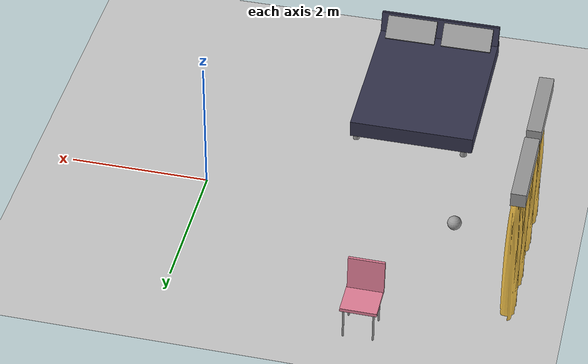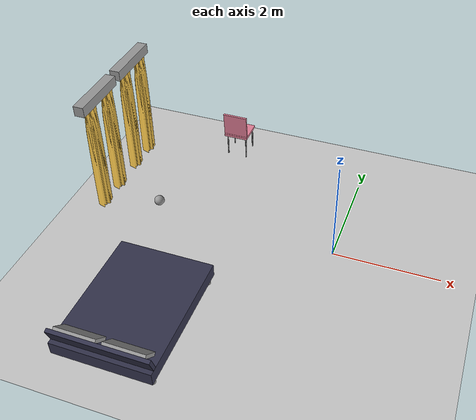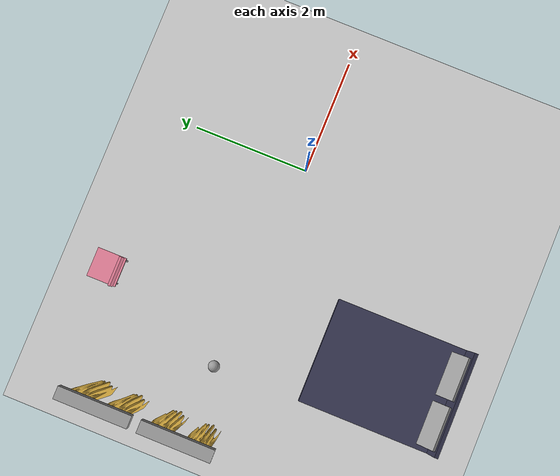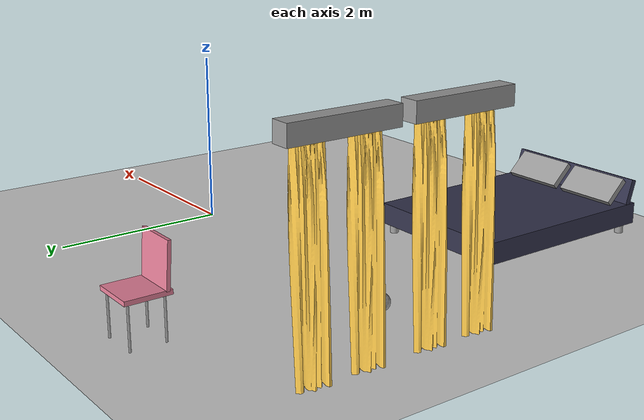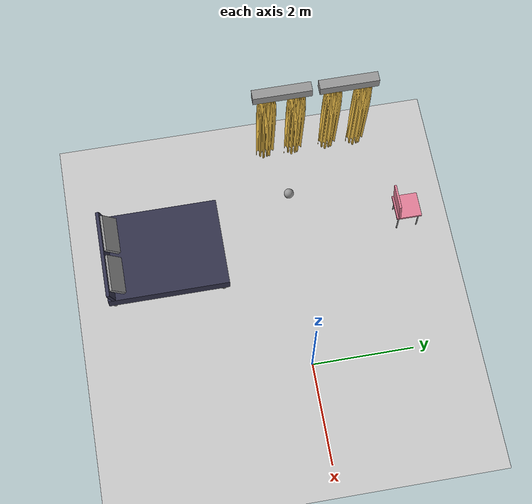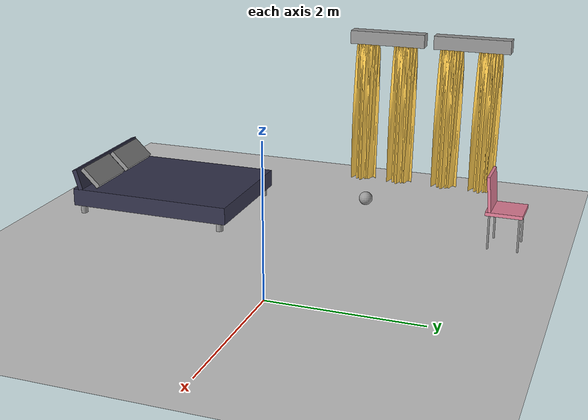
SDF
<sdf version="1.7">
 <world name="default">
  <model name="ground_plane">
   <static>1</static>
   <link name="link">
    <collision name="collision">
     <geometry><plane><normal>0 0 1</normal><size>100 100</size></plane></geometry>
     <surface>
      <contact><collide_bitmask>65535</collide_bitmask></contact>
      <friction><ode><mu>100</mu><mu2>50</mu2></ode></friction>
     </surface>
    </collision>
    <visual name="visual">
     <cast_shadows>0</cast_shadows>
     <geometry><plane><normal>0 0 1</normal><size>100 100</size></plane></geometry>
     <material>
      <script><uri>file://media/materials/scripts/gazebo.material</uri><name>Gazebo/Grey</name></script>
     </material>
    </visual>
   </link>
  </model>
  <model name="my_chair">
   <link name="link">
    <inertial>
     <mass>1</mass>
     <inertia>
      <ixx>0.166667</ixx>
      <ixy>0</ixy>
      <ixz>0</ixz>
      <iyy>0.166667</iyy>
      <iyz>0</iyz>
      <izz>0.166667</izz>
     </inertia>
    </inertial>
    <gravity>0</gravity>
    <visual name="visual">
     <geometry><box><size>0.5 0.5 0.05</size></box></geometry>
     <material>
      <script><name>Gazebo/Grey</name><uri>file://media/materials/scripts/gazebo.material</uri></script>
      <shader type="pixel"><normal_map>__default__</normal_map></shader>
      <ambient>0.9 0.5 0.6 1</ambient>
      <diffuse>0.9 0.5 0.6 1</diffuse>
      <specular>0.01 0.01 0.01 1</specular>
      <emissive>0 0 0 1</emissive>
     </material>
     <pose>0 0 0.5 0 -0 0</pose>
    </visual>
    <collision name="collision">
     <pose>0 0 0.5 0 -0 0</pose>
     <geometry><box><size>0.5 0.5 0.05</size></box></geometry>
     <surface>
      <friction>
       <ode><mu>1</mu><mu2>1</mu2><fdir1>0 0 0</fdir1><slip1>0</slip1><slip2>0</slip2></ode>
       <torsional>
        <coefficient>1</coefficient>
        <patch_radius>0</patch_radius>
        <surface_radius>0</surface_radius>
        <use_patch_radius>1</use_patch_radius>
        <ode><slip>0</slip></ode>
       </torsional>
      </friction>
      <bounce><restitution_coefficient>0</restitution_coefficient><threshold>1e+06</threshold></bounce>
      <contact>
       <collide_without_contact>0</collide_without_contact>
       <collide_without_contact_bitmask>1</collide_without_contact_bitmask>
       <collide_bitmask>1</collide_bitmask>
       <ode>
        <soft_cfm>0</soft_cfm>
        <soft_erp>0.2</soft_erp>
        <kp>1e+13</kp>
        <kd>1</kd>
        <max_vel>0.01</max_vel>
        <min_depth>0</min_depth>
       </ode>
       <bullet>
        <split_impulse>1</split_impulse>
        <split_impulse_penetration_threshold>-0.01</split_impulse_penetration_threshold>
        <soft_cfm>0</soft_cfm>
        <soft_erp>0.2</soft_erp>
        <kp>1e+13</kp>
        <kd>1</kd>
       </bullet>
      </contact>
     </surface>
    </collision>
   </link>
   <link name="link_0">
    <inertial>
     <mass>1</mass>
     <inertia><ixx>0.145833</ixx><ixy>0</ixy><ixz>0</ixz><iyy>0.145833</iyy><iyz>0</iyz><izz>0.125</izz></inertia>
    </inertial>
    <pose>-0.200315 -0.184767 -0.272701 -0 -0 -0</pose>
    <gravity>0</gravity>
    <visual name="visual">
     <pose>0 0 0.5 0 -0 0</pose>
     <geometry><cylinder><radius>0.013</radius><length>0.5</length></cylinder></geometry>
     <material>
      <lighting>1</lighting>
      <script><uri>file://media/materials/scripts/gazebo.material</uri><name>Gazebo/Grey</name></script>
      <shader type="pixel"><normal_map>__default__</normal_map></shader>
      <ambient>0.3 0.3 0.3 1</ambient>
      <diffuse>0.7 0.7 0.7 1</diffuse>
      <specular>0.01 0.01 0.01 1</specular>
      <emissive>0 0 0 1</emissive>
     </material>
    </visual>
    <collision name="collision">
     <pose>0 0 0.5 0 -0 0</pose>
     <geometry><cylinder><radius>0.013</radius><length>0.5</length></cylinder></geometry>
     <surface>
      <friction>
       <ode><mu>1</mu><mu2>1</mu2><fdir1>0 0 0</fdir1><slip1>0</slip1><slip2>0</slip2></ode>
       <torsional>
        <coefficient>1</coefficient>
        <patch_radius>0</patch_radius>
        <surface_radius>0</surface_radius>
        <use_patch_radius>1</use_patch_radius>
        <ode><slip>0</slip></ode>
       </torsional>
      </friction>
      <bounce><restitution_coefficient>0</restitution_coefficient><threshold>1e+06</threshold></bounce>
      <contact>
       <collide_without_contact>0</collide_without_contact>
       <collide_without_contact_bitmask>1</collide_without_contact_bitmask>
       <collide_bitmask>1</collide_bitmask>
       <ode>
        <soft_cfm>0</soft_cfm>
        <soft_erp>0.2</soft_erp>
        <kp>1e+13</kp>
        <kd>1</kd>
        <max_vel>0.01</max_vel>
        <min_depth>0</min_depth>
       </ode>
       <bullet>
        <split_impulse>1</split_impulse>
        <split_impulse_penetration_threshold>-0.01</split_impulse_penetration_threshold>
        <soft_cfm>0</soft_cfm>
        <soft_erp>0.2</soft_erp>
        <kp>1e+13</kp>
        <kd>1</kd>
       </bullet>
      </contact>
     </surface>
    </collision>
   </link>
   <link name="link_0_clone">
    <inertial>
     <mass>1</mass>
     <inertia><ixx>0.145833</ixx><ixy>0</ixy><ixz>0</ixz><iyy>0.145833</iyy><iyz>0</iyz><izz>0.125</izz></inertia>
    </inertial>
    <pose>-0.198839 0.194466 -0.272701 -0 -0 -0</pose>
    <gravity>0</gravity>
    <visual name="visual">
     <pose>0 0 0.5 0 -0 0</pose>
     <geometry><cylinder><radius>0.013</radius><length>0.5</length></cylinder></geometry>
     <material>
      <lighting>1</lighting>
      <script><uri>file://media/materials/scripts/gazebo.material</uri><name>Gazebo/Grey</name></script>
      <shader type="pixel"><normal_map>__default__</normal_map></shader>
      <ambient>0.3 0.3 0.3 1</ambient>
      <diffuse>0.7 0.7 0.7 1</diffuse>
      <specular>0.01 0.01 0.01 1</specular>
      <emissive>0 0 0 1</emissive>
     </material>
    </visual>
    <collision name="collision">
     <pose>0 0 0.5 0 -0 0</pose>
     <geometry><cylinder><radius>0.013</radius><length>0.5</length></cylinder></geometry>
     <surface>
      <friction>
       <ode><mu>1</mu><mu2>1</mu2><fdir1>0 0 0</fdir1><slip1>0</slip1><slip2>0</slip2></ode>
       <torsional>
        <coefficient>1</coefficient>
        <patch_radius>0</patch_radius>
        <surface_radius>0</surface_radius>
        <use_patch_radius>1</use_patch_radius>
        <ode><slip>0</slip></ode>
       </torsional>
      </friction>
      <bounce><restitution_coefficient>0</restitution_coefficient><threshold>1e+06</threshold></bounce>
      <contact>
       <collide_without_contact>0</collide_without_contact>
       <collide_without_contact_bitmask>1</collide_without_contact_bitmask>
       <collide_bitmask>1</collide_bitmask>
       <ode>
        <soft_cfm>0</soft_cfm>
        <soft_erp>0.2</soft_erp>
        <kp>1e+13</kp>
        <kd>1</kd>
        <max_vel>0.01</max_vel>
        <min_depth>0</min_depth>
       </ode>
       <bullet>
        <split_impulse>1</split_impulse>
        <split_impulse_penetration_threshold>-0.01</split_impulse_penetration_threshold>
        <soft_cfm>0</soft_cfm>
        <soft_erp>0.2</soft_erp>
        <kp>1e+13</kp>
        <kd>1</kd>
       </bullet>
      </contact>
     </surface>
    </collision>
   </link>
   <link name="link_0_clone_0">
    <inertial>
     <mass>1</mass>
     <inertia><ixx>0.145833</ixx><ixy>0</ixy><ixz>0</ixz><iyy>0.145833</iyy><iyz>0</iyz><izz>0.125</izz></inertia>
    </inertial>
    <pose>0.211914 -0.198881 -0.272701 -0 -0 -0</pose>
    <gravity>0</gravity>
    <visual name="visual">
     <pose>0 0 0.5 0 -0 0</pose>
     <geometry><cylinder><radius>0.013</radius><length>0.5</length></cylinder></geometry>
     <material>
      <lighting>1</lighting>
      <script><uri>file://media/materials/scripts/gazebo.material</uri><name>Gazebo/Grey</name></script>
      <shader type="pixel"><normal_map>__default__</normal_map></shader>
      <ambient>0.3 0.3 0.3 1</ambient>
      <diffuse>0.7 0.7 0.7 1</diffuse>
      <specular>0.01 0.01 0.01 1</specular>
      <emissive>0 0 0 1</emissive>
     </material>
    </visual>
    <collision name="collision">
     <pose>0 0 0.5 0 -0 0</pose>
     <geometry><cylinder><radius>0.013</radius><length>0.5</length></cylinder></geometry>
     <surface>
      <friction>
       <ode><mu>1</mu><mu2>1</mu2><fdir1>0 0 0</fdir1><slip1>0</slip1><slip2>0</slip2></ode>
       <torsional>
        <coefficient>1</coefficient>
        <patch_radius>0</patch_radius>
        <surface_radius>0</surface_radius>
        <use_patch_radius>1</use_patch_radius>
        <ode><slip>0</slip></ode>
       </torsional>
      </friction>
      <bounce><restitution_coefficient>0</restitution_coefficient><threshold>1e+06</threshold></bounce>
      <contact>
       <collide_without_contact>0</collide_without_contact>
       <collide_without_contact_bitmask>1</collide_without_contact_bitmask>
       <collide_bitmask>1</collide_bitmask>
       <ode>
        <soft_cfm>0</soft_cfm>
        <soft_erp>0.2</soft_erp>
        <kp>1e+13</kp>
        <kd>1</kd>
        <max_vel>0.01</max_vel>
        <min_depth>0</min_depth>
       </ode>
       <bullet>
        <split_impulse>1</split_impulse>
        <split_impulse_penetration_threshold>-0.01</split_impulse_penetration_threshold>
        <soft_cfm>0</soft_cfm>
        <soft_erp>0.2</soft_erp>
        <kp>1e+13</kp>
        <kd>1</kd>
       </bullet>
      </contact>
     </surface>
    </collision>
   </link>
   <link name="link_0_clone_1">
    <inertial>
     <mass>1</mass>
     <inertia><ixx>0.145833</ixx><ixy>0</ixy><ixz>0</ixz><iyy>0.145833</iyy><iyz>0</iyz><izz>0.125</izz></inertia>
    </inertial>
    <pose>0.207422 0.203987 -0.272701 -0 -0 -0</pose>
    <gravity>0</gravity>
    <visual name="visual">
     <pose>0 0 0.5 0 -0 0</pose>
     <geometry><cylinder><radius>0.013</radius><length>0.5</length></cylinder></geometry>
     <material>
      <lighting>1</lighting>
      <script><uri>file://media/materials/scripts/gazebo.material</uri><name>Gazebo/Grey</name></script>
      <shader type="pixel"><normal_map>__default__</normal_map></shader>
      <ambient>0.3 0.3 0.3 1</ambient>
      <diffuse>0.7 0.7 0.7 1</diffuse>
      <specular>0.01 0.01 0.01 1</specular>
      <emissive>0 0 0 1</emissive>
     </material>
    </visual>
    <collision name="collision">
     <pose>0 0 0.5 0 -0 0</pose>
     <geometry><cylinder><radius>0.013</radius><length>0.5</length></cylinder></geometry>
     <surface>
      <friction>
       <ode><mu>1</mu><mu2>1</mu2><fdir1>0 0 0</fdir1><slip1>0</slip1><slip2>0</slip2></ode>
       <torsional>
        <coefficient>1</coefficient>
        <patch_radius>0</patch_radius>
        <surface_radius>0</surface_radius>
        <use_patch_radius>1</use_patch_radius>
        <ode><slip>0</slip></ode>
       </torsional>
      </friction>
      <bounce><restitution_coefficient>0</restitution_coefficient><threshold>1e+06</threshold></bounce>
      <contact>
       <collide_without_contact>0</collide_without_contact>
       <collide_without_contact_bitmask>1</collide_without_contact_bitmask>
       <collide_bitmask>1</collide_bitmask>
       <ode>
        <soft_cfm>0</soft_cfm>
        <soft_erp>0.2</soft_erp>
        <kp>1e+13</kp>
        <kd>1</kd>
        <max_vel>0.01</max_vel>
        <min_depth>0</min_depth>
       </ode>
       <bullet>
        <split_impulse>1</split_impulse>
        <split_impulse_penetration_threshold>-0.01</split_impulse_penetration_threshold>
        <soft_cfm>0</soft_cfm>
        <soft_erp>0.2</soft_erp>
        <kp>1e+13</kp>
        <kd>1</kd>
       </bullet>
      </contact>
     </surface>
    </collision>
   </link>
   <link name="link_clone">
    <inertial>
     <mass>1</mass>
     <inertia>
      <ixx>0.166667</ixx>
      <ixy>0</ixy>
      <ixz>0</ixz>
      <iyy>0.166667</iyy>
      <iyz>0</iyz>
      <izz>0.166667</izz>
     </inertia>
    </inertial>
    <pose>-0.00806 -0.212496 0.264135 -0 -0 -0</pose>
    <gravity>0</gravity>
    <visual name="visual">
     <geometry><box><size>0.5 0.5 0.04</size></box></geometry>
     <material>
      <script><name>Gazebo/Grey</name><uri>file://media/materials/scripts/gazebo.material</uri></script>
      <shader type="pixel"><normal_map>__default__</normal_map></shader>
      <ambient>0.9 0.5 0.6 1</ambient>
      <diffuse>0.9 0.5 0.6 1</diffuse>
      <specular>0.01 0.01 0.01 1</specular>
      <emissive>0 0 0 1</emissive>
     </material>
     <pose>0 0 0.5 -1.5 0 0</pose>
    </visual>
    <collision name="collision">
     <pose>0 0 0.5 -1.5 0 0</pose>
     <geometry><box><size>0.5 0.5 0.04</size></box></geometry>
     <surface>
      <friction>
       <ode><mu>1</mu><mu2>1</mu2><fdir1>0 0 0</fdir1><slip1>0</slip1><slip2>0</slip2></ode>
       <torsional>
        <coefficient>1</coefficient>
        <patch_radius>0</patch_radius>
        <surface_radius>0</surface_radius>
        <use_patch_radius>1</use_patch_radius>
        <ode><slip>0</slip></ode>
       </torsional>
      </friction>
      <bounce><restitution_coefficient>0</restitution_coefficient><threshold>1e+06</threshold></bounce>
      <contact>
       <collide_without_contact>0</collide_without_contact>
       <collide_without_contact_bitmask>1</collide_without_contact_bitmask>
       <collide_bitmask>1</collide_bitmask>
       <ode>
        <soft_cfm>0</soft_cfm>
        <soft_erp>0.2</soft_erp>
        <kp>1e+13</kp>
        <kd>1</kd>
        <max_vel>0.01</max_vel>
        <min_depth>0</min_depth>
       </ode>
       <bullet>
        <split_impulse>1</split_impulse>
        <split_impulse_penetration_threshold>-0.01</split_impulse_penetration_threshold>
        <soft_cfm>0</soft_cfm>
        <soft_erp>0.2</soft_erp>
        <kp>1e+13</kp>
        <kd>1</kd>
       </bullet>
      </contact>
     </surface>
    </collision>
   </link>
   <static>1</static>
   <pose>-2.76354 2.4224 0 0 -0 0</pose>
  </model>
  <model name="my_bed">
   <link name="link">
    <inertial>
     <mass>1</mass>
     <inertia>
      <ixx>0.166667</ixx>
      <ixy>0</ixy>
      <ixz>0</ixz>
      <iyy>0.166667</iyy>
      <iyz>0</iyz>
      <izz>0.166667</izz>
     </inertia>
    </inertial>
    <pose>-1.13234 -0.845126 0 0 -0 0</pose>
    <visual name="visual">
     <geometry><box><size>1.8 2.4 0.25</size></box></geometry>
     <material>
      <script><name>Gazebo/Grey</name><uri>file://media/materials/scripts/gazebo.material</uri></script>
      <shader type="pixel"><normal_map>__default__</normal_map></shader>
      <ambient>0.2 0.2 0.3 1</ambient>
      <diffuse>0.2 0.2 0.3 1</diffuse>
      <specular>0.01 0.01 0.01 1</specular>
      <emissive>0.1 0.1 0.1 1</emissive>
      <lighting>1</lighting>
     </material>
     <pose>0 0 0.25 0 -0 0</pose>
    </visual>
    <collision name="collision">
     <pose>0 0 0.25 0 -0 0</pose>
     <geometry><box><size>1.8 2.4 0.25</size></box></geometry>
     <surface>
      <friction>
       <ode><mu>1</mu><mu2>1</mu2><fdir1>0 0 0</fdir1><slip1>0</slip1><slip2>0</slip2></ode>
       <torsional>
        <coefficient>1</coefficient>
        <patch_radius>0</patch_radius>
        <surface_radius>0</surface_radius>
        <use_patch_radius>1</use_patch_radius>
        <ode><slip>0</slip></ode>
       </torsional>
      </friction>
      <bounce><restitution_coefficient>0</restitution_coefficient><threshold>1e+06</threshold></bounce>
      <contact>
       <collide_without_contact>0</collide_without_contact>
       <collide_without_contact_bitmask>1</collide_without_contact_bitmask>
       <collide_bitmask>1</collide_bitmask>
       <ode>
        <soft_cfm>0</soft_cfm>
        <soft_erp>0.2</soft_erp>
        <kp>1e+13</kp>
        <kd>1</kd>
        <max_vel>0.01</max_vel>
        <min_depth>0</min_depth>
       </ode>
       <bullet>
        <split_impulse>1</split_impulse>
        <split_impulse_penetration_threshold>-0.01</split_impulse_penetration_threshold>
        <soft_cfm>0</soft_cfm>
        <soft_erp>0.2</soft_erp>
        <kp>1e+13</kp>
        <kd>1</kd>
       </bullet>
      </contact>
     </surface>
    </collision>
   </link>
   <link name="link_0">
    <inertial>
     <mass>1</mass>
     <inertia><ixx>0.145833</ixx><ixy>0</ixy><ixz>0</ixz><iyy>0.145833</iyy><iyz>0</iyz><izz>0.125</izz></inertia>
    </inertial>
    <pose>-0.307109 0.243589 0.068801 0 -0 0</pose>
    <gravity>0</gravity>
    <visual name="visual">
     <geometry><cylinder><radius>0.05</radius><length>0.13</length></cylinder></geometry>
     <material>
      <lighting>1</lighting>
      <script><uri>file://media/materials/scripts/gazebo.material</uri><name>Gazebo/Grey</name></script>
      <shader type="pixel"><normal_map>__default__</normal_map></shader>
      <ambient>0.3 0.3 0.3 1</ambient>
      <diffuse>0.7 0.7 0.7 1</diffuse>
      <specular>0.01 0.01 0.01 1</specular>
      <emissive>0 0 0 1</emissive>
     </material>
    </visual>
    <collision name="collision">
     <geometry><cylinder><radius>0.05</radius><length>0.13</length></cylinder></geometry>
     <surface>
      <friction>
       <ode><mu>1</mu><mu2>1</mu2><fdir1>0 0 0</fdir1><slip1>0</slip1><slip2>0</slip2></ode>
       <torsional>
        <coefficient>1</coefficient>
        <patch_radius>0</patch_radius>
        <surface_radius>0</surface_radius>
        <use_patch_radius>1</use_patch_radius>
        <ode><slip>0</slip></ode>
       </torsional>
      </friction>
      <bounce><restitution_coefficient>0</restitution_coefficient><threshold>1e+06</threshold></bounce>
      <contact>
       <collide_without_contact>0</collide_without_contact>
       <collide_without_contact_bitmask>1</collide_without_contact_bitmask>
       <collide_bitmask>1</collide_bitmask>
       <ode>
        <soft_cfm>0</soft_cfm>
        <soft_erp>0.2</soft_erp>
        <kp>1e+13</kp>
        <kd>1</kd>
        <max_vel>0.01</max_vel>
        <min_depth>0</min_depth>
       </ode>
       <bullet>
        <split_impulse>1</split_impulse>
        <split_impulse_penetration_threshold>-0.01</split_impulse_penetration_threshold>
        <soft_cfm>0</soft_cfm>
        <soft_erp>0.2</soft_erp>
        <kp>1e+13</kp>
        <kd>1</kd>
       </bullet>
      </contact>
     </surface>
    </collision>
   </link>
   <link name="link_0_0_clone">
    <inertial>
     <mass>1</mass>
     <inertia>
      <ixx>0.166667</ixx>
      <ixy>0</ixy>
      <ixz>0</ixz>
      <iyy>0.166667</iyy>
      <iyz>0</iyz>
      <izz>0.166667</izz>
     </inertia>
    </inertial>
    <pose>-1.57153 -1.81704 0.527562 0 -0 0</pose>
    <gravity>0</gravity>
    <visual name="visual_0">
     <pose>0 0 0 0.8 -0 0</pose>
     <geometry><box><size>0.75 0.07 0.35</size></box></geometry>
     <material>
      <lighting>1</lighting>
      <script><uri>file://media/materials/scripts/gazebo.material</uri><name>Gazebo/Grey</name></script>
      <shader type="pixel"><normal_map>__default__</normal_map></shader>
      <ambient>1 1 1 0</ambient>
      <diffuse>1 1 1 1</diffuse>
      <specular>0.01 0.01 0.01 1</specular>
      <emissive>0 0 0 1</emissive>
     </material>
    </visual>
    <collision name="collision">
     <pose>0 0 0 0.8 -0 0</pose>
     <geometry><box><size>0.75 0.07 0.35</size></box></geometry>
     <surface>
      <friction>
       <ode><mu>1</mu><mu2>1</mu2><fdir1>0 0 0</fdir1><slip1>0</slip1><slip2>0</slip2></ode>
       <torsional>
        <coefficient>1</coefficient>
        <patch_radius>0</patch_radius>
        <surface_radius>0</surface_radius>
        <use_patch_radius>1</use_patch_radius>
        <ode><slip>0</slip></ode>
       </torsional>
      </friction>
      <bounce><restitution_coefficient>0</restitution_coefficient><threshold>1e+06</threshold></bounce>
      <contact>
       <collide_without_contact>0</collide_without_contact>
       <collide_without_contact_bitmask>1</collide_without_contact_bitmask>
       <collide_bitmask>1</collide_bitmask>
       <ode>
        <soft_cfm>0</soft_cfm>
        <soft_erp>0.2</soft_erp>
        <kp>1e+13</kp>
        <kd>1</kd>
        <max_vel>0.01</max_vel>
        <min_depth>0</min_depth>
       </ode>
       <bullet>
        <split_impulse>1</split_impulse>
        <split_impulse_penetration_threshold>-0.01</split_impulse_penetration_threshold>
        <soft_cfm>0</soft_cfm>
        <soft_erp>0.2</soft_erp>
        <kp>1e+13</kp>
        <kd>1</kd>
       </bullet>
      </contact>
     </surface>
    </collision>
   </link>
   <link name="link_0_0_clone_clone">
    <inertial>
     <mass>1</mass>
     <inertia>
      <ixx>0.166667</ixx>
      <ixy>0</ixy>
      <ixz>0</ixz>
      <iyy>0.166667</iyy>
      <iyz>0</iyz>
      <izz>0.166667</izz>
     </inertia>
    </inertial>
    <pose>-0.71588 -1.81886 0.527562 0 -0 0</pose>
    <gravity>0</gravity>
    <visual name="visual_0">
     <pose>0 0 0 0.8 -0 0</pose>
     <geometry><box><size>0.75 0.07 0.35</size></box></geometry>
     <material>
      <lighting>1</lighting>
      <script><uri>file://media/materials/scripts/gazebo.material</uri><name>Gazebo/Grey</name></script>
      <shader type="pixel"><normal_map>__default__</normal_map></shader>
      <ambient>1 1 1 0</ambient>
      <diffuse>1 1 1 1</diffuse>
      <specular>0.01 0.01 0.01 1</specular>
      <emissive>0 0 0 1</emissive>
     </material>
    </visual>
    <collision name="collision">
     <pose>0 0 0 0.8 -0 0</pose>
     <geometry><box><size>0.75 0.07 0.35</size></box></geometry>
     <surface>
      <friction>
       <ode><mu>1</mu><mu2>1</mu2><fdir1>0 0 0</fdir1><slip1>0</slip1><slip2>0</slip2></ode>
       <torsional>
        <coefficient>1</coefficient>
        <patch_radius>0</patch_radius>
        <surface_radius>0</surface_radius>
        <use_patch_radius>1</use_patch_radius>
        <ode><slip>0</slip></ode>
       </torsional>
      </friction>
      <bounce><restitution_coefficient>0</restitution_coefficient><threshold>1e+06</threshold></bounce>
      <contact>
       <collide_without_contact>0</collide_without_contact>
       <collide_without_contact_bitmask>1</collide_without_contact_bitmask>
       <collide_bitmask>1</collide_bitmask>
       <ode>
        <soft_cfm>0</soft_cfm>
        <soft_erp>0.2</soft_erp>
        <kp>1e+13</kp>
        <kd>1</kd>
        <max_vel>0.01</max_vel>
        <min_depth>0</min_depth>
       </ode>
       <bullet>
        <split_impulse>1</split_impulse>
        <split_impulse_penetration_threshold>-0.01</split_impulse_penetration_threshold>
        <soft_cfm>0</soft_cfm>
        <soft_erp>0.2</soft_erp>
        <kp>1e+13</kp>
        <kd>1</kd>
       </bullet>
      </contact>
     </surface>
    </collision>
   </link>
   <link name="link_0_clone">
    <inertial>
     <mass>1</mass>
     <inertia><ixx>0.145833</ixx><ixy>0</ixy><ixz>0</ixz><iyy>0.145833</iyy><iyz>0</iyz><izz>0.125</izz></inertia>
    </inertial>
    <pose>-1.9007 0.274345 0.068801 0 -0 0</pose>
    <gravity>0</gravity>
    <visual name="visual">
     <geometry><cylinder><radius>0.05</radius><length>0.13</length></cylinder></geometry>
     <material>
      <lighting>1</lighting>
      <script><uri>file://media/materials/scripts/gazebo.material</uri><name>Gazebo/Grey</name></script>
      <shader type="pixel"><normal_map>__default__</normal_map></shader>
      <ambient>0.3 0.3 0.3 1</ambient>
      <diffuse>0.7 0.7 0.7 1</diffuse>
      <specular>0.01 0.01 0.01 1</specular>
      <emissive>0 0 0 1</emissive>
     </material>
    </visual>
    <collision name="collision">
     <geometry><cylinder><radius>0.05</radius><length>0.13</length></cylinder></geometry>
     <surface>
      <friction>
       <ode><mu>1</mu><mu2>1</mu2><fdir1>0 0 0</fdir1><slip1>0</slip1><slip2>0</slip2></ode>
       <torsional>
        <coefficient>1</coefficient>
        <patch_radius>0</patch_radius>
        <surface_radius>0</surface_radius>
        <use_patch_radius>1</use_patch_radius>
        <ode><slip>0</slip></ode>
       </torsional>
      </friction>
      <bounce><restitution_coefficient>0</restitution_coefficient><threshold>1e+06</threshold></bounce>
      <contact>
       <collide_without_contact>0</collide_without_contact>
       <collide_without_contact_bitmask>1</collide_without_contact_bitmask>
       <collide_bitmask>1</collide_bitmask>
       <ode>
        <soft_cfm>0</soft_cfm>
        <soft_erp>0.2</soft_erp>
        <kp>1e+13</kp>
        <kd>1</kd>
        <max_vel>0.01</max_vel>
        <min_depth>0</min_depth>
       </ode>
       <bullet>
        <split_impulse>1</split_impulse>
        <split_impulse_penetration_threshold>-0.01</split_impulse_penetration_threshold>
        <soft_cfm>0</soft_cfm>
        <soft_erp>0.2</soft_erp>
        <kp>1e+13</kp>
        <kd>1</kd>
       </bullet>
      </contact>
     </surface>
    </collision>
   </link>
   <link name="link_0_clone_0">
    <inertial>
     <mass>1</mass>
     <inertia><ixx>0.145833</ixx><ixy>0</ixy><ixz>0</ixz><iyy>0.145833</iyy><iyz>0</iyz><izz>0.125</izz></inertia>
    </inertial>
    <pose>-0.307106 -1.92435 0.068801 0 -0 0</pose>
    <gravity>0</gravity>
    <visual name="visual">
     <geometry><cylinder><radius>0.05</radius><length>0.13</length></cylinder></geometry>
     <material>
      <lighting>1</lighting>
      <script><uri>file://media/materials/scripts/gazebo.material</uri><name>Gazebo/Grey</name></script>
      <shader type="pixel"><normal_map>__default__</normal_map></shader>
      <ambient>0.3 0.3 0.3 1</ambient>
      <diffuse>0.7 0.7 0.7 1</diffuse>
      <specular>0.01 0.01 0.01 1</specular>
      <emissive>0 0 0 1</emissive>
     </material>
    </visual>
    <collision name="collision">
     <geometry><cylinder><radius>0.05</radius><length>0.13</length></cylinder></geometry>
     <surface>
      <friction>
       <ode><mu>1</mu><mu2>1</mu2><fdir1>0 0 0</fdir1><slip1>0</slip1><slip2>0</slip2></ode>
       <torsional>
        <coefficient>1</coefficient>
        <patch_radius>0</patch_radius>
        <surface_radius>0</surface_radius>
        <use_patch_radius>1</use_patch_radius>
        <ode><slip>0</slip></ode>
       </torsional>
      </friction>
      <bounce><restitution_coefficient>0</restitution_coefficient><threshold>1e+06</threshold></bounce>
      <contact>
       <collide_without_contact>0</collide_without_contact>
       <collide_without_contact_bitmask>1</collide_without_contact_bitmask>
       <collide_bitmask>1</collide_bitmask>
       <ode>
        <soft_cfm>0</soft_cfm>
        <soft_erp>0.2</soft_erp>
        <kp>1e+13</kp>
        <kd>1</kd>
        <max_vel>0.01</max_vel>
        <min_depth>0</min_depth>
       </ode>
       <bullet>
        <split_impulse>1</split_impulse>
        <split_impulse_penetration_threshold>-0.01</split_impulse_penetration_threshold>
        <soft_cfm>0</soft_cfm>
        <soft_erp>0.2</soft_erp>
        <kp>1e+13</kp>
        <kd>1</kd>
       </bullet>
      </contact>
     </surface>
    </collision>
   </link>
   <link name="link_0_clone_1">
    <inertial>
     <mass>1</mass>
     <inertia><ixx>0.145833</ixx><ixy>0</ixy><ixz>0</ixz><iyy>0.145833</iyy><iyz>0</iyz><izz>0.125</izz></inertia>
    </inertial>
    <pose>-1.92795 -1.92176 0.068801 0 -0 0</pose>
    <gravity>0</gravity>
    <visual name="visual">
     <geometry><cylinder><radius>0.05</radius><length>0.13</length></cylinder></geometry>
     <material>
      <lighting>1</lighting>
      <script><uri>file://media/materials/scripts/gazebo.material</uri><name>Gazebo/Grey</name></script>
      <shader type="pixel"><normal_map>__default__</normal_map></shader>
      <ambient>0.3 0.3 0.3 1</ambient>
      <diffuse>0.7 0.7 0.7 1</diffuse>
      <specular>0.01 0.01 0.01 1</specular>
      <emissive>0 0 0 1</emissive>
     </material>
    </visual>
    <collision name="collision">
     <geometry><cylinder><radius>0.05</radius><length>0.13</length></cylinder></geometry>
     <surface>
      <friction>
       <ode><mu>1</mu><mu2>1</mu2><fdir1>0 0 0</fdir1><slip1>0</slip1><slip2>0</slip2></ode>
       <torsional>
        <coefficient>1</coefficient>
        <patch_radius>0</patch_radius>
        <surface_radius>0</surface_radius>
        <use_patch_radius>1</use_patch_radius>
        <ode><slip>0</slip></ode>
       </torsional>
      </friction>
      <bounce><restitution_coefficient>0</restitution_coefficient><threshold>1e+06</threshold></bounce>
      <contact>
       <collide_without_contact>0</collide_without_contact>
       <collide_without_contact_bitmask>1</collide_without_contact_bitmask>
       <collide_bitmask>1</collide_bitmask>
       <ode>
        <soft_cfm>0</soft_cfm>
        <soft_erp>0.2</soft_erp>
        <kp>1e+13</kp>
        <kd>1</kd>
        <max_vel>0.01</max_vel>
        <min_depth>0</min_depth>
       </ode>
       <bullet>
        <split_impulse>1</split_impulse>
        <split_impulse_penetration_threshold>-0.01</split_impulse_penetration_threshold>
        <soft_cfm>0</soft_cfm>
        <soft_erp>0.2</soft_erp>
        <kp>1e+13</kp>
        <kd>1</kd>
       </bullet>
      </contact>
     </surface>
    </collision>
   </link>
   <link name="link_1">
    <inertial>
     <mass>1</mass>
     <inertia>
      <ixx>0.166667</ixx>
      <ixy>0</ixy>
      <ixz>0</ixz>
      <iyy>0.166667</iyy>
      <iyz>0</iyz>
      <izz>0.166667</izz>
     </inertia>
    </inertial>
    <pose>-1.13157 -1.96783 0.518762 0 -0 0</pose>
    <visual name="visual">
     <pose>0 0 0 0.3 -0 0</pose>
     <geometry><box><size>1.8 0.07 0.3</size></box></geometry>
     <material>
      <lighting>1</lighting>
      <script><uri>file://media/materials/scripts/gazebo.material</uri><name>Gazebo/Grey</name></script>
      <shader type="pixel"><normal_map>__default__</normal_map></shader>
      <ambient>0.2 0.2 0.3 1</ambient>
      <diffuse>0.2 0.2 0.3 1</diffuse>
      <specular>0.01 0.01 0.01 1</specular>
      <emissive>0.1 0.1 0.1 1</emissive>
     </material>
    </visual>
    <collision name="collision">
     <pose>0 0 0 0.3 -0 0</pose>
     <geometry><box><size>1.8 0.07 0.3</size></box></geometry>
     <surface>
      <friction>
       <ode><mu>1</mu><mu2>1</mu2><fdir1>0 0 0</fdir1><slip1>0</slip1><slip2>0</slip2></ode>
       <torsional>
        <coefficient>1</coefficient>
        <patch_radius>0</patch_radius>
        <surface_radius>0</surface_radius>
        <use_patch_radius>1</use_patch_radius>
        <ode><slip>0</slip></ode>
       </torsional>
      </friction>
      <bounce><restitution_coefficient>0</restitution_coefficient><threshold>1e+06</threshold></bounce>
      <contact>
       <collide_without_contact>0</collide_without_contact>
       <collide_without_contact_bitmask>1</collide_without_contact_bitmask>
       <collide_bitmask>1</collide_bitmask>
       <ode>
        <soft_cfm>0</soft_cfm>
        <soft_erp>0.2</soft_erp>
        <kp>1e+13</kp>
        <kd>1</kd>
        <max_vel>0.01</max_vel>
        <min_depth>0</min_depth>
       </ode>
       <bullet>
        <split_impulse>1</split_impulse>
        <split_impulse_penetration_threshold>-0.01</split_impulse_penetration_threshold>
        <soft_cfm>0</soft_cfm>
        <soft_erp>0.2</soft_erp>
        <kp>1e+13</kp>
        <kd>1</kd>
       </bullet>
      </contact>
     </surface>
    </collision>
   </link>
   <static>1</static>
   <pose>-1.58128 -1.66699 0 0 -0 0</pose>
  </model>
  <model name="my_white_ball">
   <link name="link_0">
    <inertial>
     <mass>1</mass>
     <inertia><ixx>0.1</ixx><ixy>0</ixy><ixz>0</ixz><iyy>0.1</iyy><iyz>0</iyz><izz>0.1</izz></inertia>
    </inertial>
    <visual name="visual">
     <geometry><sphere><radius>0.1</radius></sphere></geometry>
     <material>
      <lighting>1</lighting>
      <script><uri>file://media/materials/scripts/gazebo.material</uri><name>Gazebo/Grey</name></script>
      <shader type="pixel"><normal_map>__default__</normal_map></shader>
      <ambient>1 1 1 1</ambient>
      <diffuse>1 1 1 1</diffuse>
      <specular>1 1 1 1</specular>
      <emissive>1 1 1 1</emissive>
     </material>
    </visual>
    <collision name="collision">
     <geometry><sphere><radius>0.1</radius></sphere></geometry>
     <surface>
      <friction>
       <ode><mu>1</mu><mu2>1</mu2><fdir1>0 0 0</fdir1><slip1>0</slip1><slip2>0</slip2></ode>
       <torsional>
        <coefficient>1</coefficient>
        <patch_radius>0</patch_radius>
        <surface_radius>0</surface_radius>
        <use_patch_radius>1</use_patch_radius>
        <ode><slip>0</slip></ode>
       </torsional>
      </friction>
      <bounce><restitution_coefficient>0</restitution_coefficient><threshold>1e+06</threshold></bounce>
      <contact>
       <collide_without_contact>0</collide_without_contact>
       <collide_without_contact_bitmask>1</collide_without_contact_bitmask>
       <collide_bitmask>1</collide_bitmask>
       <ode>
        <soft_cfm>0</soft_cfm>
        <soft_erp>0.2</soft_erp>
        <kp>1e+13</kp>
        <kd>1</kd>
        <max_vel>0.01</max_vel>
        <min_depth>0</min_depth>
       </ode>
       <bullet>
        <split_impulse>1</split_impulse>
        <split_impulse_penetration_threshold>-0.01</split_impulse_penetration_threshold>
        <soft_cfm>0</soft_cfm>
        <soft_erp>0.2</soft_erp>
        <kp>1e+13</kp>
        <kd>1</kd>
       </bullet>
      </contact>
     </surface>
    </collision>
   </link>
   <static>0</static>
   <pose>-3.62852 0.197947 0.1 0 -0 0</pose>
  </model>
  <model name="my_curtains_v2">
   <link name="link_0">
    <inertial>
     <mass>1</mass>
     <inertia>
      <ixx>0.166667</ixx>
      <ixy>0</ixy>
      <ixz>0</ixz>
      <iyy>0.166667</iyy>
      <iyz>0</iyz>
      <izz>0.166667</izz>
     </inertia>
    </inertial>
    <pose>-0.196447 0.34663 -0.060343 0 -0 1.5714</pose>
    <visual name="visual">
     <pose>0 0 1.28 0 -0 0</pose>
     <geometry>
      <mesh>
       <uri>/home/massari/workspace/catkin_ws/src/my_robot/models/my_curtains/../../meshes/my_curtain.dae</uri>
       <scale>0.6 1 1.15</scale>
      </mesh>
     </geometry>
     <material>
      <lighting>1</lighting>
      <script><uri>file://media/materials/scripts/gazebo.material</uri><name>Gazebo/Grey</name></script>
      <shader type="pixel"><normal_map>__default__</normal_map></shader>
      <ambient>1 0.8 0.3 1</ambient>
      <diffuse>1 0.8 0.3 1</diffuse>
      <specular>0.01 0.01 0.01 1</specular>
      <emissive>0 0 0 1</emissive>
     </material>
    </visual>
    <collision name="collision">
     <pose>0 0 1.28 0 -0 0</pose>
     <geometry>
      <mesh>
       <uri>/home/massari/workspace/catkin_ws/src/my_robot/models/my_curtains/../../meshes/my_curtain.dae</uri>
       <scale>0.6 1 1.15</scale>
      </mesh>
     </geometry>
     <surface>
      <friction>
       <ode><mu>1</mu><mu2>1</mu2><fdir1>0 0 0</fdir1><slip1>0</slip1><slip2>0</slip2></ode>
       <torsional>
        <coefficient>1</coefficient>
        <patch_radius>0</patch_radius>
        <surface_radius>0</surface_radius>
        <use_patch_radius>1</use_patch_radius>
        <ode><slip>0</slip></ode>
       </torsional>
      </friction>
      <bounce><restitution_coefficient>0</restitution_coefficient><threshold>1e+06</threshold></bounce>
      <contact>
       <collide_without_contact>0</collide_without_contact>
       <collide_without_contact_bitmask>1</collide_without_contact_bitmask>
       <collide_bitmask>1</collide_bitmask>
       <ode>
        <soft_cfm>0</soft_cfm>
        <soft_erp>0.2</soft_erp>
        <kp>1e+13</kp>
        <kd>1</kd>
        <max_vel>0.01</max_vel>
        <min_depth>0</min_depth>
       </ode>
       <bullet>
        <split_impulse>1</split_impulse>
        <split_impulse_penetration_threshold>-0.01</split_impulse_penetration_threshold>
        <soft_cfm>0</soft_cfm>
        <soft_erp>0.2</soft_erp>
        <kp>1e+13</kp>
        <kd>1</kd>
       </bullet>
      </contact>
     </surface>
    </collision>
   </link>
   <link name="link_0_clone">
    <inertial>
     <mass>1</mass>
     <inertia>
      <ixx>0.166667</ixx>
      <ixy>0</ixy>
      <ixz>0</ixz>
      <iyy>0.166667</iyy>
      <iyz>0</iyz>
      <izz>0.166667</izz>
     </inertia>
    </inertial>
    <pose>-0.192892 0.930317 -0.060343 0 -0 1.5714</pose>
    <visual name="visual">
     <pose>0 0 1.28 0 -0 0</pose>
     <geometry>
      <mesh>
       <uri>/home/massari/workspace/catkin_ws/src/my_robot/models/my_curtains/../../meshes/my_curtain.dae</uri>
       <scale>0.6 1 1.15</scale>
      </mesh>
     </geometry>
     <material>
      <lighting>1</lighting>
      <script><uri>file://media/materials/scripts/gazebo.material</uri><name>Gazebo/Grey</name></script>
      <shader type="pixel"><normal_map>__default__</normal_map></shader>
      <ambient>1 0.8 0.3 1</ambient>
      <diffuse>1 0.8 0.3 1</diffuse>
      <specular>0.01 0.01 0.01 1</specular>
      <emissive>0 0 0 1</emissive>
     </material>
    </visual>
    <collision name="collision">
     <pose>0 0 1.28 0 -0 0</pose>
     <geometry>
      <mesh>
       <uri>/home/massari/workspace/catkin_ws/src/my_robot/models/my_curtains/../../meshes/my_curtain.dae</uri>
       <scale>0.6 1 1.15</scale>
      </mesh>
     </geometry>
     <surface>
      <friction>
       <ode><mu>1</mu><mu2>1</mu2><fdir1>0 0 0</fdir1><slip1>0</slip1><slip2>0</slip2></ode>
       <torsional>
        <coefficient>1</coefficient>
        <patch_radius>0</patch_radius>
        <surface_radius>0</surface_radius>
        <use_patch_radius>1</use_patch_radius>
        <ode><slip>0</slip></ode>
       </torsional>
      </friction>
      <bounce><restitution_coefficient>0</restitution_coefficient><threshold>1e+06</threshold></bounce>
      <contact>
       <collide_without_contact>0</collide_without_contact>
       <collide_without_contact_bitmask>1</collide_without_contact_bitmask>
       <collide_bitmask>1</collide_bitmask>
       <ode>
        <soft_cfm>0</soft_cfm>
        <soft_erp>0.2</soft_erp>
        <kp>1e+13</kp>
        <kd>1</kd>
        <max_vel>0.01</max_vel>
        <min_depth>0</min_depth>
       </ode>
       <bullet>
        <split_impulse>1</split_impulse>
        <split_impulse_penetration_threshold>-0.01</split_impulse_penetration_threshold>
        <soft_cfm>0</soft_cfm>
        <soft_erp>0.2</soft_erp>
        <kp>1e+13</kp>
        <kd>1</kd>
       </bullet>
      </contact>
     </surface>
    </collision>
   </link>
   <link name="link_2">
    <inertial>
     <mass>1</mass>
     <inertia>
      <ixx>0.166667</ixx>
      <ixy>0</ixy>
      <ixz>0</ixz>
      <iyy>0.166667</iyy>
      <iyz>0</iyz>
      <izz>0.166667</izz>
     </inertia>
    </inertial>
    <pose>-0.239313 0.203562 1.05159 0 -0 0</pose>
    <visual name="visual">
     <pose>0 0 1.28 0 -0 0</pose>
     <geometry><box><size>0.2 1.15 0.2</size></box></geometry>
     <material>
      <lighting>1</lighting>
      <script><uri>file://media/materials/scripts/gazebo.material</uri><name>Gazebo/Grey</name></script>
      <shader type="pixel"><normal_map>__default__</normal_map></shader>
      <ambient>0.9 0.9 0.9 1</ambient>
      <diffuse>0.9 0.9 0.9 1</diffuse>
      <specular>0.01 0.01 0.01 1</specular>
      <emissive>0 0 0 1</emissive>
     </material>
    </visual>
    <collision name="collision">
     <pose>0 0 1.28 0 -0 0</pose>
     <geometry><box><size>0.2 1.15 0.2</size></box></geometry>
     <surface>
      <friction>
       <ode><mu>1</mu><mu2>1</mu2><fdir1>0 0 0</fdir1><slip1>0</slip1><slip2>0</slip2></ode>
       <torsional>
        <coefficient>1</coefficient>
        <patch_radius>0</patch_radius>
        <surface_radius>0</surface_radius>
        <use_patch_radius>1</use_patch_radius>
        <ode><slip>0</slip></ode>
       </torsional>
      </friction>
      <bounce><restitution_coefficient>0</restitution_coefficient><threshold>1e+06</threshold></bounce>
      <contact>
       <collide_without_contact>0</collide_without_contact>
       <collide_without_contact_bitmask>1</collide_without_contact_bitmask>
       <collide_bitmask>1</collide_bitmask>
       <ode>
        <soft_cfm>0</soft_cfm>
        <soft_erp>0.2</soft_erp>
        <kp>1e+13</kp>
        <kd>1</kd>
        <max_vel>0.01</max_vel>
        <min_depth>0</min_depth>
       </ode>
       <bullet>
        <split_impulse>1</split_impulse>
        <split_impulse_penetration_threshold>-0.01</split_impulse_penetration_threshold>
        <soft_cfm>0</soft_cfm>
        <soft_erp>0.2</soft_erp>
        <kp>1e+13</kp>
        <kd>1</kd>
       </bullet>
      </contact>
     </surface>
    </collision>
   </link>
   <static>1</static>
   <pose>-4.43728 0.001354 0 0 -0 0</pose>
  </model>
  <model name="my_curtains_v2_clone">
   <link name="link_0">
    <inertial>
     <mass>1</mass>
     <inertia>
      <ixx>0.166667</ixx>
      <ixy>0</ixy>
      <ixz>0</ixz>
      <iyy>0.166667</iyy>
      <iyz>0</iyz>
      <izz>0.166667</izz>
     </inertia>
    </inertial>
    <pose>-0.196447 0.34663 -0.060343 0 -0 1.5714</pose>
    <visual name="visual">
     <pose>0 0 1.28 0 -0 0</pose>
     <geometry>
      <mesh>
       <uri>/home/massari/workspace/catkin_ws/src/my_robot/models/my_curtains/../../meshes/my_curtain.dae</uri>
       <scale>0.6 1 1.15</scale>
      </mesh>
     </geometry>
     <material>
      <lighting>1</lighting>
      <script><uri>file://media/materials/scripts/gazebo.material</uri><name>Gazebo/Grey</name></script>
      <shader type="pixel"><normal_map>__default__</normal_map></shader>
      <ambient>1 0.8 0.3 1</ambient>
      <diffuse>1 0.8 0.3 1</diffuse>
      <specular>0.01 0.01 0.01 1</specular>
      <emissive>0 0 0 1</emissive>
     </material>
    </visual>
    <collision name="collision">
     <pose>0 0 1.28 0 -0 0</pose>
     <geometry>
      <mesh>
       <uri>/home/massari/workspace/catkin_ws/src/my_robot/models/my_curtains/../../meshes/my_curtain.dae</uri>
       <scale>0.6 1 1.15</scale>
      </mesh>
     </geometry>
     <surface>
      <friction>
       <ode><mu>1</mu><mu2>1</mu2><fdir1>0 0 0</fdir1><slip1>0</slip1><slip2>0</slip2></ode>
       <torsional>
        <coefficient>1</coefficient>
        <patch_radius>0</patch_radius>
        <surface_radius>0</surface_radius>
        <use_patch_radius>1</use_patch_radius>
        <ode><slip>0</slip></ode>
       </torsional>
      </friction>
      <bounce><restitution_coefficient>0</restitution_coefficient><threshold>1e+06</threshold></bounce>
      <contact>
       <collide_without_contact>0</collide_without_contact>
       <collide_without_contact_bitmask>1</collide_without_contact_bitmask>
       <collide_bitmask>1</collide_bitmask>
       <ode>
        <soft_cfm>0</soft_cfm>
        <soft_erp>0.2</soft_erp>
        <kp>1e+13</kp>
        <kd>1</kd>
        <max_vel>0.01</max_vel>
        <min_depth>0</min_depth>
       </ode>
       <bullet>
        <split_impulse>1</split_impulse>
        <split_impulse_penetration_threshold>-0.01</split_impulse_penetration_threshold>
        <soft_cfm>0</soft_cfm>
        <soft_erp>0.2</soft_erp>
        <kp>1e+13</kp>
        <kd>1</kd>
       </bullet>
      </contact>
     </surface>
    </collision>
   </link>
   <link name="link_0_clone">
    <inertial>
     <mass>1</mass>
     <inertia>
      <ixx>0.166667</ixx>
      <ixy>0</ixy>
      <ixz>0</ixz>
      <iyy>0.166667</iyy>
      <iyz>0</iyz>
      <izz>0.166667</izz>
     </inertia>
    </inertial>
    <pose>-0.192892 0.930317 -0.060343 0 -0 1.5714</pose>
    <visual name="visual">
     <pose>0 0 1.28 0 -0 0</pose>
     <geometry>
      <mesh>
       <uri>/home/massari/workspace/catkin_ws/src/my_robot/models/my_curtains/../../meshes/my_curtain.dae</uri>
       <scale>0.6 1 1.15</scale>
      </mesh>
     </geometry>
     <material>
      <lighting>1</lighting>
      <script><uri>file://media/materials/scripts/gazebo.material</uri><name>Gazebo/Grey</name></script>
      <shader type="pixel"><normal_map>__default__</normal_map></shader>
      <ambient>1 0.8 0.3 1</ambient>
      <diffuse>1 0.8 0.3 1</diffuse>
      <specular>0.01 0.01 0.01 1</specular>
      <emissive>0 0 0 1</emissive>
     </material>
    </visual>
    <collision name="collision">
     <pose>0 0 1.28 0 -0 0</pose>
     <geometry>
      <mesh>
       <uri>/home/massari/workspace/catkin_ws/src/my_robot/models/my_curtains/../../meshes/my_curtain.dae</uri>
       <scale>0.6 1 1.15</scale>
      </mesh>
     </geometry>
     <surface>
      <friction>
       <ode><mu>1</mu><mu2>1</mu2><fdir1>0 0 0</fdir1><slip1>0</slip1><slip2>0</slip2></ode>
       <torsional>
        <coefficient>1</coefficient>
        <patch_radius>0</patch_radius>
        <surface_radius>0</surface_radius>
        <use_patch_radius>1</use_patch_radius>
        <ode><slip>0</slip></ode>
       </torsional>
      </friction>
      <bounce><restitution_coefficient>0</restitution_coefficient><threshold>1e+06</threshold></bounce>
      <contact>
       <collide_without_contact>0</collide_without_contact>
       <collide_without_contact_bitmask>1</collide_without_contact_bitmask>
       <collide_bitmask>1</collide_bitmask>
       <ode>
        <soft_cfm>0</soft_cfm>
        <soft_erp>0.2</soft_erp>
        <kp>1e+13</kp>
        <kd>1</kd>
        <max_vel>0.01</max_vel>
        <min_depth>0</min_depth>
       </ode>
       <bullet>
        <split_impulse>1</split_impulse>
        <split_impulse_penetration_threshold>-0.01</split_impulse_penetration_threshold>
        <soft_cfm>0</soft_cfm>
        <soft_erp>0.2</soft_erp>
        <kp>1e+13</kp>
        <kd>1</kd>
       </bullet>
      </contact>
     </surface>
    </collision>
   </link>
   <link name="link_2">
    <inertial>
     <mass>1</mass>
     <inertia>
      <ixx>0.166667</ixx>
      <ixy>0</ixy>
      <ixz>0</ixz>
      <iyy>0.166667</iyy>
      <iyz>0</iyz>
      <izz>0.166667</izz>
     </inertia>
    </inertial>
    <pose>-0.239313 0.203562 1.05159 0 -0 0</pose>
    <visual name="visual">
     <pose>0 0 1.28 0 -0 0</pose>
     <geometry><box><size>0.2 1.15 0.2</size></box></geometry>
     <material>
      <lighting>1</lighting>
      <script><uri>file://media/materials/scripts/gazebo.material</uri><name>Gazebo/Grey</name></script>
      <shader type="pixel"><normal_map>__default__</normal_map></shader>
      <ambient>0.9 0.9 0.9 1</ambient>
      <diffuse>0.9 0.9 0.9 1</diffuse>
      <specular>0.01 0.01 0.01 1</specular>
      <emissive>0 0 0 1</emissive>
     </material>
    </visual>
    <collision name="collision">
     <pose>0 0 1.28 0 -0 0</pose>
     <geometry><box><size>0.2 1.15 0.2</size></box></geometry>
     <surface>
      <friction>
       <ode><mu>1</mu><mu2>1</mu2><fdir1>0 0 0</fdir1><slip1>0</slip1><slip2>0</slip2></ode>
       <torsional>
        <coefficient>1</coefficient>
        <patch_radius>0</patch_radius>
        <surface_radius>0</surface_radius>
        <use_patch_radius>1</use_patch_radius>
        <ode><slip>0</slip></ode>
       </torsional>
      </friction>
      <bounce><restitution_coefficient>0</restitution_coefficient><threshold>1e+06</threshold></bounce>
      <contact>
       <collide_without_contact>0</collide_without_contact>
       <collide_without_contact_bitmask>1</collide_without_contact_bitmask>
       <collide_bitmask>1</collide_bitmask>
       <ode>
        <soft_cfm>0</soft_cfm>
        <soft_erp>0.2</soft_erp>
        <kp>1e+13</kp>
        <kd>1</kd>
        <max_vel>0.01</max_vel>
        <min_depth>0</min_depth>
       </ode>
       <bullet>
        <split_impulse>1</split_impulse>
        <split_impulse_penetration_threshold>-0.01</split_impulse_penetration_threshold>
        <soft_cfm>0</soft_cfm>
        <soft_erp>0.2</soft_erp>
        <kp>1e+13</kp>
        <kd>1</kd>
       </bullet>
      </contact>
     </surface>
    </collision>
   </link>
   <static>1</static>
   <pose>-4.43523 1.29539 0 0 -0 0</pose>
  </model>
 </world>
</sdf>
